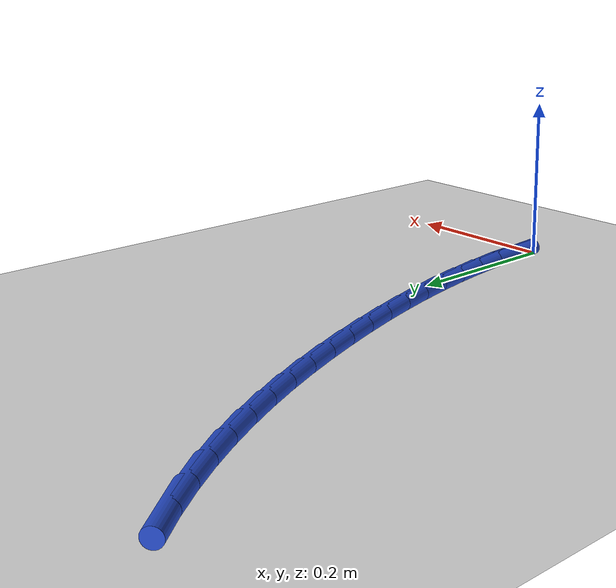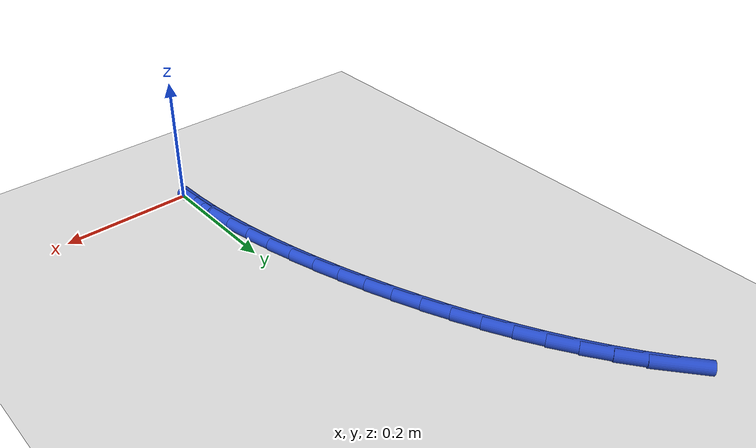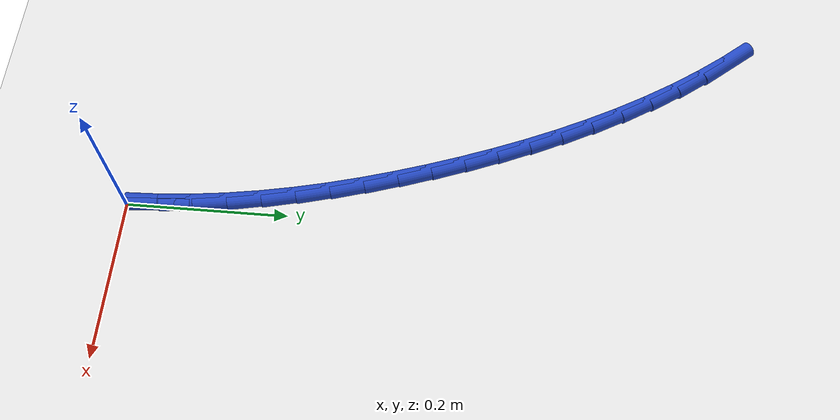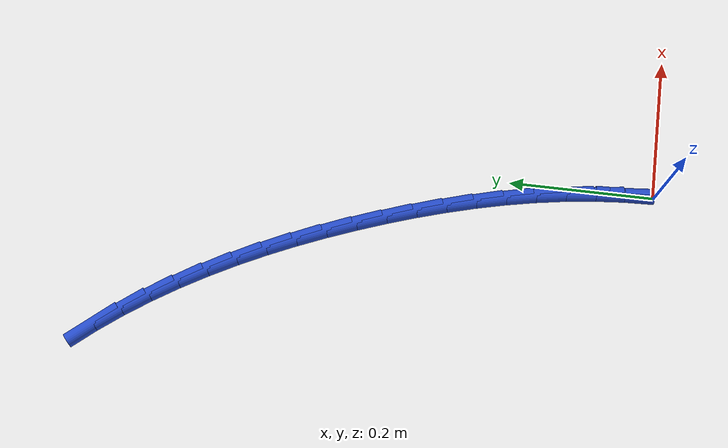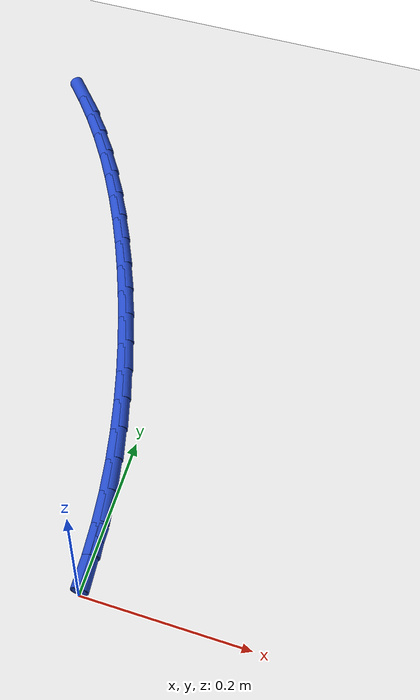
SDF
<sdf version="1.6">
 <world name="default">
  <model name="ground_plane">
   <static>1</static>
   <link name="link">
    <collision name="collision">
     <geometry><plane><normal>0 0 1</normal><size>100 100</size></plane></geometry>
     <surface><friction><ode><mu>100</mu><mu2>50</mu2></ode></friction></surface>
    </collision>
    <visual name="visual">
     <cast_shadows>0</cast_shadows>
     <geometry><plane><normal>0 0 1</normal><size>100 100</size></plane></geometry>
     <material>
      <script><uri>file://media/materials/scripts/gazebo.material</uri><name>Gazebo/WhiteGlow</name></script>
     </material>
    </visual>
   </link>
  </model>
  <model name="line">
   <link name="link_1">
    <pose>-0.0014994985751226322 0.0413571029254914 0.01 0 1.57 -1.4905350404561943</pose>
    <collision name="collision">
     <geometry><cylinder><radius>0.01</radius><length>0.08</length></cylinder></geometry>
    </collision>
    <visual name="visual">
     <material>
      <script><name>Gazebo/Blue</name><uri>file://media/materials/scripts/gazebo.material</uri></script>
     </material>
     <geometry><cylinder><radius>0.01</radius><length>0.08</length></cylinder></geometry>
    </visual>
   </link>
   <link name="link_2">
    <pose>-0.004814354495690805 0.08256918724697052 0.01 0 1.57 -1.448894063524369</pose>
    <collision name="collision">
     <geometry><cylinder><radius>0.01</radius><length>0.08</length></cylinder></geometry>
    </collision>
    <visual name="visual">
     <material>
      <script><name>Gazebo/Blue</name><uri>file://media/materials/scripts/gazebo.material</uri></script>
     </material>
     <geometry><cylinder><radius>0.01</radius><length>0.08</length></cylinder></geometry>
    </visual>
   </link>
   <link name="link_3">
    <pose>-0.00984477007275671 0.12363055170432462 0.01 0 1.57 -1.40972528085246</pose>
    <collision name="collision">
     <geometry><cylinder><radius>0.01</radius><length>0.08</length></cylinder></geometry>
    </collision>
    <visual name="visual">
     <material>
      <script><name>Gazebo/Blue</name><uri>file://media/materials/scripts/gazebo.material</uri></script>
     </material>
     <geometry><cylinder><radius>0.01</radius><length>0.08</length></cylinder></geometry>
    </visual>
   </link>
   <link name="link_4">
    <pose>-0.01649094761737251 0.16453549503744083 0.01 0 1.57 -1.3730803527121769</pose>
    <collision name="collision">
     <geometry><cylinder><radius>0.01</radius><length>0.08</length></cylinder></geometry>
    </collision>
    <visual name="visual">
     <material>
      <script><name>Gazebo/Blue</name><uri>file://media/materials/scripts/gazebo.material</uri></script>
     </material>
     <geometry><cylinder><radius>0.01</radius><length>0.08</length></cylinder></geometry>
    </visual>
   </link>
   <link name="link_5">
    <pose>-0.024653089440590414 0.2052783159862065 0.01 0 1.57 -1.3389760038839054</pose>
    <collision name="collision">
     <geometry><cylinder><radius>0.01</radius><length>0.08</length></cylinder></geometry>
    </collision>
    <visual name="visual">
     <material>
      <script><name>Gazebo/Blue</name><uri>file://media/materials/scripts/gazebo.material</uri></script>
     </material>
     <geometry><cylinder><radius>0.01</radius><length>0.08</length></cylinder></geometry>
    </visual>
   </link>
   <link name="link_6">
    <pose>-0.03423139785346262 0.2458533132905088 0.01 0 1.57 -1.3074010422420275</pose>
    <collision name="collision">
     <geometry><cylinder><radius>0.01</radius><length>0.08</length></cylinder></geometry>
    </collision>
    <visual name="visual">
     <material>
      <script><name>Gazebo/Blue</name><uri>file://media/materials/scripts/gazebo.material</uri></script>
     </material>
     <geometry><cylinder><radius>0.01</radius><length>0.08</length></cylinder></geometry>
    </visual>
   </link>
   <link name="link_7">
    <pose>-0.045126075167041285 0.2862547856902349 0.01 0 1.57 -1.2783231371852053</pose>
    <collision name="collision">
     <geometry><cylinder><radius>0.01</radius><length>0.08</length></cylinder></geometry>
    </collision>
    <visual name="visual">
     <material>
      <script><name>Gazebo/Blue</name><uri>file://media/materials/scripts/gazebo.material</uri></script>
     </material>
     <geometry><cylinder><radius>0.01</radius><length>0.08</length></cylinder></geometry>
    </visual>
   </link>
   <link name="link_8">
    <pose>-0.05723732369237864 0.3264770319252721 0.01 0 1.57 -1.251695029158145</pose>
    <collision name="collision">
     <geometry><cylinder><radius>0.01</radius><length>0.08</length></cylinder></geometry>
    </collision>
    <visual name="visual">
     <material>
      <script><name>Gazebo/Blue</name><uri>file://media/materials/scripts/gazebo.material</uri></script>
     </material>
     <geometry><cylinder><radius>0.01</radius><length>0.08</length></cylinder></geometry>
    </visual>
   </link>
   <link name="link_9">
    <pose>-0.07046534574052682 0.36651435073550764 0.01 0 1.57 -1.2273121983127415</pose>
    <collision name="collision">
     <geometry><cylinder><radius>0.01</radius><length>0.08</length></cylinder></geometry>
    </collision>
    <visual name="visual">
     <material>
      <script><name>Gazebo/Blue</name><uri>file://media/materials/scripts/gazebo.material</uri></script>
     </material>
     <geometry><cylinder><radius>0.01</radius><length>0.08</length></cylinder></geometry>
    </visual>
   </link>
   <link name="link_10">
    <pose>-0.0847154783561046 0.4063568262257687 0.01 0 1.57 -1.2028412332825416</pose>
    <collision name="collision">
     <geometry><cylinder><radius>0.01</radius><length>0.08</length></cylinder></geometry>
    </collision>
    <visual name="visual">
     <material>
      <script><name>Gazebo/Blue</name><uri>file://media/materials/scripts/gazebo.material</uri></script>
     </material>
     <geometry><cylinder><radius>0.01</radius><length>0.08</length></cylinder></geometry>
    </visual>
   </link>
   <link name="link_11">
    <pose>-0.09997149352571137 0.44593016240167804 0.01 0 1.57 -1.1763962450981311</pose>
    <collision name="collision">
     <geometry><cylinder><radius>0.01</radius><length>0.08</length></cylinder></geometry>
    </collision>
    <visual name="visual">
     <material>
      <script><name>Gazebo/Blue</name><uri>file://media/materials/scripts/gazebo.material</uri></script>
     </material>
     <geometry><cylinder><radius>0.01</radius><length>0.08</length></cylinder></geometry>
    </visual>
   </link>
   <link name="link_12">
    <pose>-0.1162783736929553 0.48510982118038287 0.01 0 1.57 -1.1477853626088326</pose>
    <collision name="collision">
     <geometry><cylinder><radius>0.01</radius><length>0.08</length></cylinder></geometry>
    </collision>
    <visual name="visual">
     <material>
      <script><name>Gazebo/Blue</name><uri>file://media/materials/scripts/gazebo.material</uri></script>
     </material>
     <geometry><cylinder><radius>0.01</radius><length>0.08</length></cylinder></geometry>
    </visual>
   </link>
   <link name="link_13">
    <pose>-0.13368272460972086 0.5237699320531336 0.01 0 1.57 -1.1168529897270363</pose>
    <collision name="collision">
     <geometry><cylinder><radius>0.01</radius><length>0.08</length></cylinder></geometry>
    </collision>
    <visual name="visual">
     <material>
      <script><name>Gazebo/Blue</name><uri>file://media/materials/scripts/gazebo.material</uri></script>
     </material>
     <geometry><cylinder><radius>0.01</radius><length>0.08</length></cylinder></geometry>
    </visual>
   </link>
   <link name="link_14">
    <pose>-0.1522311520278927 0.5617846245111813 0.01 0 1.57 -1.0834355295382123</pose>
    <collision name="collision">
     <geometry><cylinder><radius>0.01</radius><length>0.08</length></cylinder></geometry>
    </collision>
    <visual name="visual">
     <material>
      <script><name>Gazebo/Blue</name><uri>file://media/materials/scripts/gazebo.material</uri></script>
     </material>
     <geometry><cylinder><radius>0.01</radius><length>0.08</length></cylinder></geometry>
    </visual>
   </link>
   <link name="link_15">
    <pose>-0.17197026169935523 0.5990280280457766 0.01 0 1.57 -1.0473650428771837</pose>
    <collision name="collision">
     <geometry><cylinder><radius>0.01</radius><length>0.08</length></cylinder></geometry>
    </collision>
    <visual name="visual">
     <material>
      <script><name>Gazebo/Blue</name><uri>file://media/materials/scripts/gazebo.material</uri></script>
     </material>
     <geometry><cylinder><radius>0.01</radius><length>0.08</length></cylinder></geometry>
    </visual>
   </link>
   <link name="link_16">
    <pose>-0.1929466593759931 0.6353742721481703 0.01 0 1.57 -1.0084744888621753</pose>
    <collision name="collision">
     <geometry><cylinder><radius>0.01</radius><length>0.08</length></cylinder></geometry>
    </collision>
    <visual name="visual">
     <material>
      <script><name>Gazebo/Blue</name><uri>file://media/materials/scripts/gazebo.material</uri></script>
     </material>
     <geometry><cylinder><radius>0.01</radius><length>0.08</length></cylinder></geometry>
    </visual>
   </link>
   <link name="link_17">
    <pose>-0.21520695080969077 0.6706974863096132 0.01 0 1.57 -0.9666049427336928</pose>
    <collision name="collision">
     <geometry><cylinder><radius>0.01</radius><length>0.08</length></cylinder></geometry>
    </collision>
    <visual name="visual">
     <material>
      <script><name>Gazebo/Blue</name><uri>file://media/materials/scripts/gazebo.material</uri></script>
     </material>
     <geometry><cylinder><radius>0.01</radius><length>0.08</length></cylinder></geometry>
    </visual>
   </link>
   <link name="link_18">
    <pose>-0.23879774175233276 0.704871800021356 0.01 0 1.57 -0.9216151532230433</pose>
    <collision name="collision">
     <geometry><cylinder><radius>0.01</radius><length>0.08</length></cylinder></geometry>
    </collision>
    <visual name="visual">
     <material>
      <script><name>Gazebo/Blue</name><uri>file://media/materials/scripts/gazebo.material</uri></script>
     </material>
     <geometry><cylinder><radius>0.01</radius><length>0.08</length></cylinder></geometry>
    </visual>
   </link>
   <link name="link_19">
    <pose>-0.26376563795580366 0.7377713427746495 0.01 0 1.57 -0.8733936760965376</pose>
    <collision name="collision">
     <geometry><cylinder><radius>0.01</radius><length>0.08</length></cylinder></geometry>
    </collision>
    <visual name="visual">
     <material>
      <script><name>Gazebo/Blue</name><uri>file://media/materials/scripts/gazebo.material</uri></script>
     </material>
     <geometry><cylinder><radius>0.01</radius><length>0.08</length></cylinder></geometry>
    </visual>
   </link>
   <link name="link_161">
    <pose>-0.0015201357522284086 0.04134229012217907 0.01 0 1.57 -1.534043374067661</pose>
    <collision name="collision">
     <geometry><cylinder><radius>0.01</radius><length>0.08</length></cylinder></geometry>
    </collision>
    <visual name="visual">
     <material>
      <script><name>Gazebo/Blue</name><uri>file://media/materials/scripts/gazebo.material</uri></script>
     </material>
     <geometry><cylinder><radius>0.01</radius><length>0.08</length></cylinder></geometry>
    </visual>
   </link>
  </model>
 </world>
</sdf>
